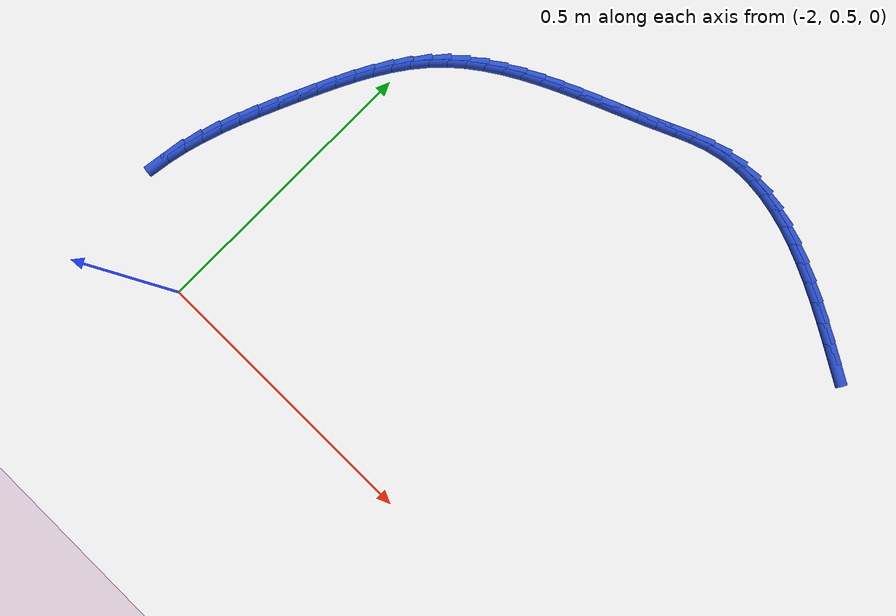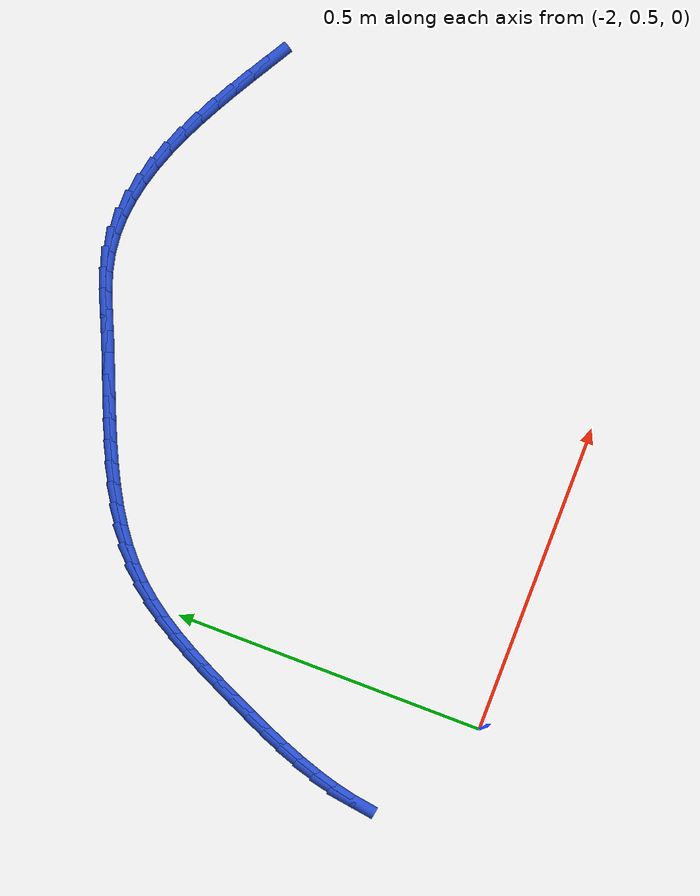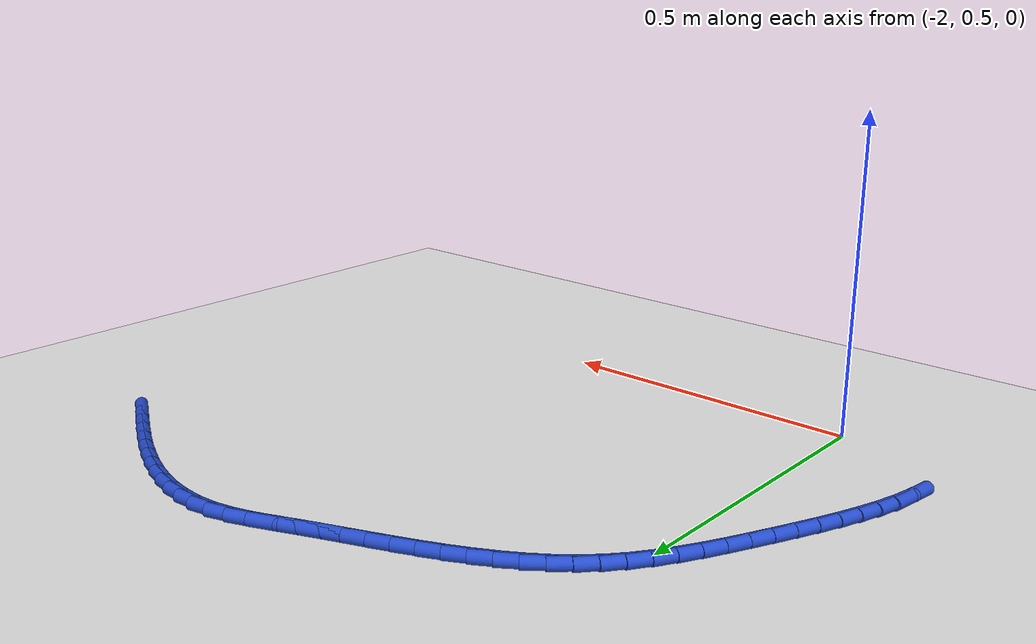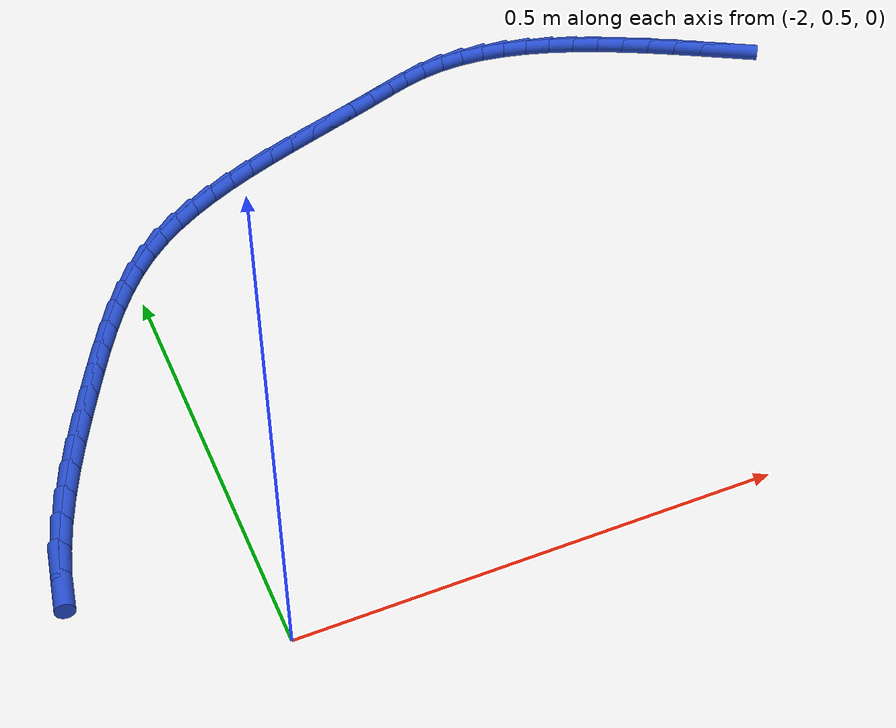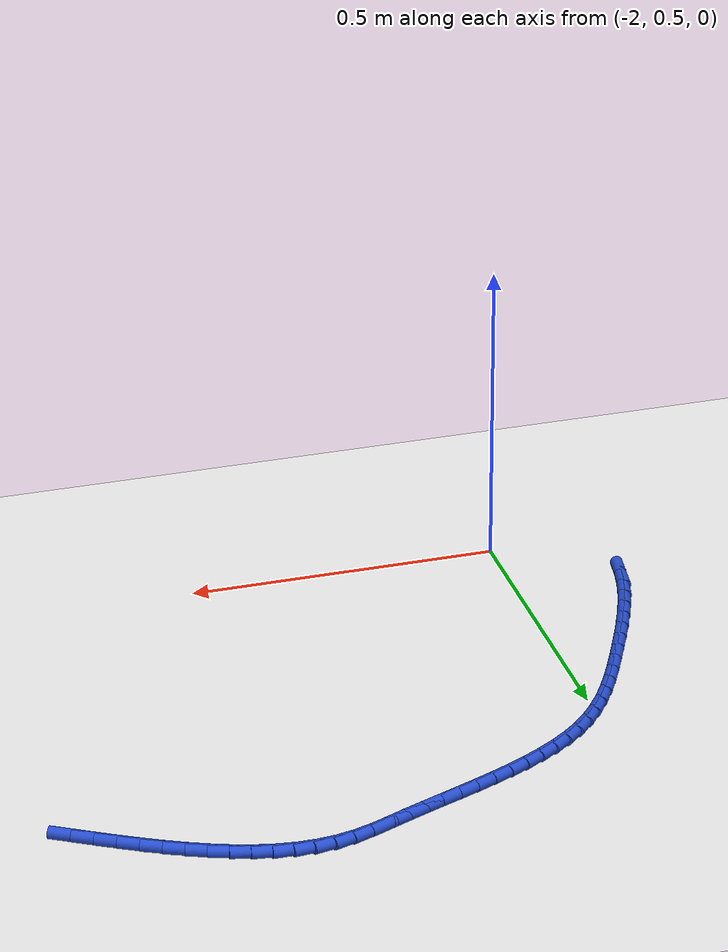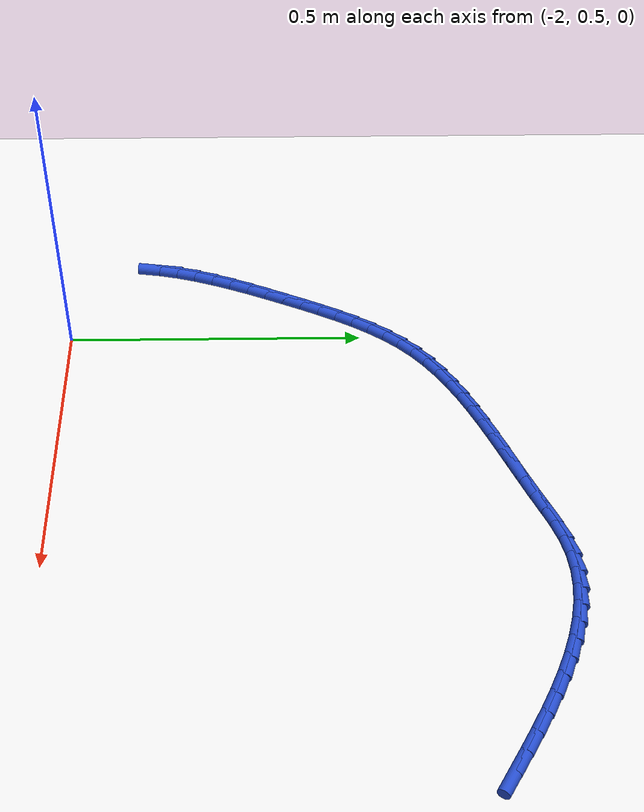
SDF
<sdf version="1.6">
 <world name="default">
  <model name="ground_plane">
   <static>1</static>
   <link name="link">
    <collision name="collision">
     <geometry><plane><normal>0 0 1</normal><size>100 100</size></plane></geometry>
     <surface><friction><ode><mu>100</mu><mu2>50</mu2></ode></friction></surface>
    </collision>
    <visual name="visual">
     <cast_shadows>0</cast_shadows>
     <geometry><plane><normal>0 0 1</normal><size>100 100</size></plane></geometry>
     <material>
      <script><uri>file://media/materials/scripts/gazebo.material</uri><name>Gazebo/WhiteGlow</name></script>
     </material>
    </visual>
   </link>
  </model>
  <model name="line">
   <link name="link_60">
    <pose>-1.1381370934596116 1.1789312146718092 0.01 0 1.57 -0.538388861175772</pose>
    <collision name="collision">
     <geometry><cylinder><radius>0.01</radius><length>0.08</length></cylinder></geometry>
    </collision>
    <visual name="visual">
     <material>
      <script><name>Gazebo/Blue</name><uri>file://media/materials/scripts/gazebo.material</uri></script>
     </material>
     <geometry><cylinder><radius>0.01</radius><length>0.08</length></cylinder></geometry>
    </visual>
   </link>
   <link name="link_61">
    <pose>-1.1689594901298903 1.1973396348787975 0.01 0 1.57 -0.5272426746919803</pose>
    <collision name="collision">
     <geometry><cylinder><radius>0.01</radius><length>0.08</length></cylinder></geometry>
    </collision>
    <visual name="visual">
     <material>
      <script><name>Gazebo/Blue</name><uri>file://media/materials/scripts/gazebo.material</uri></script>
     </material>
     <geometry><cylinder><radius>0.01</radius><length>0.08</length></cylinder></geometry>
    </visual>
   </link>
   <link name="link_62">
    <pose>-1.1998259808511984 1.2153106942731842 0.01 0 1.57 -0.508659933239682</pose>
    <collision name="collision">
     <geometry><cylinder><radius>0.01</radius><length>0.08</length></cylinder></geometry>
    </collision>
    <visual name="visual">
     <material>
      <script><name>Gazebo/Blue</name><uri>file://media/materials/scripts/gazebo.material</uri></script>
     </material>
     <geometry><cylinder><radius>0.01</radius><length>0.08</length></cylinder></geometry>
    </visual>
   </link>
   <link name="link_63">
    <pose>-1.2307246584461935 1.2325398179920721 0.01 0 1.57 -0.48218251883578617</pose>
    <collision name="collision">
     <geometry><cylinder><radius>0.01</radius><length>0.08</length></cylinder></geometry>
    </collision>
    <visual name="visual">
     <material>
      <script><name>Gazebo/Blue</name><uri>file://media/materials/scripts/gazebo.material</uri></script>
     </material>
     <geometry><cylinder><radius>0.01</radius><length>0.08</length></cylinder></geometry>
    </visual>
   </link>
   <link name="link_64">
    <pose>-1.2616436157375317 1.2487224311725627 0.01 0 1.57 -0.447162766416436</pose>
    <collision name="collision">
     <geometry><cylinder><radius>0.01</radius><length>0.08</length></cylinder></geometry>
    </collision>
    <visual name="visual">
     <material>
      <script><name>Gazebo/Blue</name><uri>file://media/materials/scripts/gazebo.material</uri></script>
     </material>
     <geometry><cylinder><radius>0.01</radius><length>0.08</length></cylinder></geometry>
    </visual>
   </link>
   <link name="link_65">
    <pose>-1.2925709455478702 1.263553958951758 0.01 0 1.57 -0.40278114426702993</pose>
    <collision name="collision">
     <geometry><cylinder><radius>0.01</radius><length>0.08</length></cylinder></geometry>
    </collision>
    <visual name="visual">
     <material>
      <script><name>Gazebo/Blue</name><uri>file://media/materials/scripts/gazebo.material</uri></script>
     </material>
     <geometry><cylinder><radius>0.01</radius><length>0.08</length></cylinder></geometry>
    </visual>
   </link>
   <link name="link_66">
    <pose>-1.3234947406998665 1.2767298264667601 0.01 0 1.57 -0.3480916377065569</pose>
    <collision name="collision">
     <geometry><cylinder><radius>0.01</radius><length>0.08</length></cylinder></geometry>
    </collision>
    <visual name="visual">
     <material>
      <script><name>Gazebo/Blue</name><uri>file://media/materials/scripts/gazebo.material</uri></script>
     </material>
     <geometry><cylinder><radius>0.01</radius><length>0.08</length></cylinder></geometry>
    </visual>
   </link>
   <link name="link_67">
    <pose>-1.3544030940161766 1.2879454588546708 0.01 0 1.57 -0.28211795650158694</pose>
    <collision name="collision">
     <geometry><cylinder><radius>0.01</radius><length>0.08</length></cylinder></geometry>
    </collision>
    <visual name="visual">
     <material>
      <script><name>Gazebo/Blue</name><uri>file://media/materials/scripts/gazebo.material</uri></script>
     </material>
     <geometry><cylinder><radius>0.01</radius><length>0.08</length></cylinder></geometry>
    </visual>
   </link>
   <link name="link_68">
    <pose>-1.3852840983194574 1.296896281252592 0.01 0 1.57 -0.20402998788747975</pose>
    <collision name="collision">
     <geometry><cylinder><radius>0.01</radius><length>0.08</length></cylinder></geometry>
    </collision>
    <visual name="visual">
     <material>
      <script><name>Gazebo/Blue</name><uri>file://media/materials/scripts/gazebo.material</uri></script>
     </material>
     <geometry><cylinder><radius>0.01</radius><length>0.08</length></cylinder></geometry>
    </visual>
   </link>
   <link name="link_69">
    <pose>-1.4161258464323665 1.3032777187976257 0.01 0 1.57 -0.1134250429588424</pose>
    <collision name="collision">
     <geometry><cylinder><radius>0.01</radius><length>0.08</length></cylinder></geometry>
    </collision>
    <visual name="visual">
     <material>
      <script><name>Gazebo/Blue</name><uri>file://media/materials/scripts/gazebo.material</uri></script>
     </material>
     <geometry><cylinder><radius>0.01</radius><length>0.08</length></cylinder></geometry>
    </visual>
   </link>
   <link name="link_70">
    <pose>-1.4469164311775604 1.3067851966268738 0.01 0 1.57 -0.010704760677421188</pose>
    <collision name="collision">
     <geometry><cylinder><radius>0.01</radius><length>0.08</length></cylinder></geometry>
    </collision>
    <visual name="visual">
     <material>
      <script><name>Gazebo/Blue</name><uri>file://media/materials/scripts/gazebo.material</uri></script>
     </material>
     <geometry><cylinder><radius>0.01</radius><length>0.08</length></cylinder></geometry>
    </visual>
   </link>
   <link name="link_71">
    <pose>-1.4776439453776957 1.3071141398774384 0.01 0 1.57 0.10253975923354064</pose>
    <collision name="collision">
     <geometry><cylinder><radius>0.01</radius><length>0.08</length></cylinder></geometry>
    </collision>
    <visual name="visual">
     <material>
      <script><name>Gazebo/Blue</name><uri>file://media/materials/scripts/gazebo.material</uri></script>
     </material>
     <geometry><cylinder><radius>0.01</radius><length>0.08</length></cylinder></geometry>
    </visual>
   </link>
   <link name="link_72">
    <pose>-1.5082964818554294 1.3039599736864214 0.01 0 1.57 0.22310440724811872</pose>
    <collision name="collision">
     <geometry><cylinder><radius>0.01</radius><length>0.08</length></cylinder></geometry>
    </collision>
    <visual name="visual">
     <material>
      <script><name>Gazebo/Blue</name><uri>file://media/materials/scripts/gazebo.material</uri></script>
     </material>
     <geometry><cylinder><radius>0.01</radius><length>0.08</length></cylinder></geometry>
    </visual>
   </link>
   <link name="link_73">
    <pose>-1.5388628648128941 1.297025031713841 0.01 0 1.57 0.3295399120203999</pose>
    <collision name="collision">
     <geometry><cylinder><radius>0.01</radius><length>0.08</length></cylinder></geometry>
    </collision>
    <visual name="visual">
     <material>
      <script><name>Gazebo/Blue</name><uri>file://media/materials/scripts/gazebo.material</uri></script>
     </material>
     <geometry><cylinder><radius>0.01</radius><length>0.08</length></cylinder></geometry>
    </visual>
   </link>
   <link name="link_74">
    <pose>-1.5693924663470862 1.28658357578187 0.01 0 1.57 0.3923643624764167</pose>
    <collision name="collision">
     <geometry><cylinder><radius>0.01</radius><length>0.08</length></cylinder></geometry>
    </collision>
    <visual name="visual">
     <material>
      <script><name>Gazebo/Blue</name><uri>file://media/materials/scripts/gazebo.material</uri></script>
     </material>
     <geometry><cylinder><radius>0.01</radius><length>0.08</length></cylinder></geometry>
    </visual>
   </link>
   <link name="link_75">
    <pose>-1.6000396001915544 1.2739011338411081 0.01 0 1.57 0.4131552980902998</pose>
    <collision name="collision">
     <geometry><cylinder><radius>0.01</radius><length>0.08</length></cylinder></geometry>
    </collision>
    <visual name="visual">
     <material>
      <script><name>Gazebo/Blue</name><uri>file://media/materials/scripts/gazebo.material</uri></script>
     </material>
     <geometry><cylinder><radius>0.01</radius><length>0.08</length></cylinder></geometry>
    </visual>
   </link>
   <link name="link_76">
    <pose>-1.6309690410488726 1.2603420469025084 0.01 0 1.57 0.40258670472709024</pose>
    <collision name="collision">
     <geometry><cylinder><radius>0.01</radius><length>0.08</length></cylinder></geometry>
    </collision>
    <visual name="visual">
     <material>
      <script><name>Gazebo/Blue</name><uri>file://media/materials/scripts/gazebo.material</uri></script>
     </material>
     <geometry><cylinder><radius>0.01</radius><length>0.08</length></cylinder></geometry>
    </visual>
   </link>
   <link name="link_77">
    <pose>-1.662282910511357 1.247007171724847 0.01 0 1.57 0.39265116937389616</pose>
    <collision name="collision">
     <geometry><cylinder><radius>0.01</radius><length>0.08</length></cylinder></geometry>
    </collision>
    <visual name="visual">
     <material>
      <script><name>Gazebo/Blue</name><uri>file://media/materials/scripts/gazebo.material</uri></script>
     </material>
     <geometry><cylinder><radius>0.01</radius><length>0.08</length></cylinder></geometry>
    </visual>
   </link>
   <link name="link_78">
    <pose>-1.6938321022162761 1.233940839547459 0.01 0 1.57 0.3910895119794084</pose>
    <collision name="collision">
     <geometry><cylinder><radius>0.01</radius><length>0.08</length></cylinder></geometry>
    </collision>
    <visual name="visual">
     <material>
      <script><name>Gazebo/Blue</name><uri>file://media/materials/scripts/gazebo.material</uri></script>
     </material>
     <geometry><cylinder><radius>0.01</radius><length>0.08</length></cylinder></geometry>
    </visual>
   </link>
   <link name="link_79">
    <pose>-1.7254045485558935 1.2209226015135606 0.01 0 1.57 0.3978843780086546</pose>
    <collision name="collision">
     <geometry><cylinder><radius>0.01</radius><length>0.08</length></cylinder></geometry>
    </collision>
    <visual name="visual">
     <material>
      <script><name>Gazebo/Blue</name><uri>file://media/materials/scripts/gazebo.material</uri></script>
     </material>
     <geometry><cylinder><radius>0.01</radius><length>0.08</length></cylinder></geometry>
    </visual>
   </link>
   <link name="link_80">
    <pose>-1.7567881819224382 1.2077320087662247 0.01 0 1.57 0.41318069459480905</pose>
    <collision name="collision">
     <geometry><cylinder><radius>0.01</radius><length>0.08</length></cylinder></geometry>
    </collision>
    <visual name="visual">
     <material>
      <script><name>Gazebo/Blue</name><uri>file://media/materials/scripts/gazebo.material</uri></script>
     </material>
     <geometry><cylinder><radius>0.01</radius><length>0.08</length></cylinder></geometry>
    </visual>
   </link>
   <link name="link_81">
    <pose>-1.7877709347081392 1.1941486124485228 0.01 0 1.57 0.4372778781065462</pose>
    <collision name="collision">
     <geometry><cylinder><radius>0.01</radius><length>0.08</length></cylinder></geometry>
    </collision>
    <visual name="visual">
     <material>
      <script><name>Gazebo/Blue</name><uri>file://media/materials/scripts/gazebo.material</uri></script>
     </material>
     <geometry><cylinder><radius>0.01</radius><length>0.08</length></cylinder></geometry>
    </visual>
   </link>
   <link name="link_82">
    <pose>-1.8181407393052256 1.1799519637035274 0.01 0 1.57 0.47060798986954094</pose>
    <collision name="collision">
     <geometry><cylinder><radius>0.01</radius><length>0.08</length></cylinder></geometry>
    </collision>
    <visual name="visual">
     <material>
      <script><name>Gazebo/Blue</name><uri>file://media/materials/scripts/gazebo.material</uri></script>
     </material>
     <geometry><cylinder><radius>0.01</radius><length>0.08</length></cylinder></geometry>
    </visual>
   </link>
   <link name="link_83">
    <pose>-1.8476855281059261 1.1649216136743106 0.01 0 1.57 0.5136919646055061</pose>
    <collision name="collision">
     <geometry><cylinder><radius>0.01</radius><length>0.08</length></cylinder></geometry>
    </collision>
    <visual name="visual">
     <material>
      <script><name>Gazebo/Blue</name><uri>file://media/materials/scripts/gazebo.material</uri></script>
     </material>
     <geometry><cylinder><radius>0.01</radius><length>0.08</length></cylinder></geometry>
    </visual>
   </link>
   <link name="link_84">
    <pose>-1.8761932335024694 1.1488371135039448 0.01 0 1.57 0.5670619754738949</pose>
    <collision name="collision">
     <geometry><cylinder><radius>0.01</radius><length>0.08</length></cylinder></geometry>
    </collision>
    <visual name="visual">
     <material>
      <script><name>Gazebo/Blue</name><uri>file://media/materials/scripts/gazebo.material</uri></script>
     </material>
     <geometry><cylinder><radius>0.01</radius><length>0.08</length></cylinder></geometry>
    </visual>
   </link>
   <link name="link_85">
    <pose>-1.9034517878870854 1.131478014335502 0.01 0 1.57 0.6311361856979234</pose>
    <collision name="collision">
     <geometry><cylinder><radius>0.01</radius><length>0.08</length></cylinder></geometry>
    </collision>
    <visual name="visual">
     <material>
      <script><name>Gazebo/Blue</name><uri>file://media/materials/scripts/gazebo.material</uri></script>
     </material>
     <geometry><cylinder><radius>0.01</radius><length>0.08</length></cylinder></geometry>
    </visual>
   </link>
   <link name="link_86">
    <pose>-1.9292491236520017 1.1126238673120545 0.01 0 1.57 0.7060370655140997</pose>
    <collision name="collision">
     <geometry><cylinder><radius>0.01</radius><length>0.08</length></cylinder></geometry>
    </collision>
    <visual name="visual">
     <material>
      <script><name>Gazebo/Blue</name><uri>file://media/materials/scripts/gazebo.material</uri></script>
     </material>
     <geometry><cylinder><radius>0.01</radius><length>0.08</length></cylinder></geometry>
    </visual>
   </link>
   <link name="link_87">
    <pose>-1.953373173189449 1.0920542235766746 0.01 0 1.57 0.7912267181577947</pose>
    <collision name="collision">
     <geometry><cylinder><radius>0.01</radius><length>0.08</length></cylinder></geometry>
    </collision>
    <visual name="visual">
     <material>
      <script><name>Gazebo/Blue</name><uri>file://media/materials/scripts/gazebo.material</uri></script>
     </material>
     <geometry><cylinder><radius>0.01</radius><length>0.08</length></cylinder></geometry>
    </visual>
   </link>
   <link name="link_88">
    <pose>-1.9756149723228351 1.0695516263254532 0.01 0 1.57 0.8776665275633718</pose>
    <collision name="collision">
     <geometry><cylinder><radius>0.01</radius><length>0.08</length></cylinder></geometry>
    </collision>
    <visual name="visual">
     <material>
      <script><name>Gazebo/Blue</name><uri>file://media/materials/scripts/gazebo.material</uri></script>
     </material>
     <geometry><cylinder><radius>0.01</radius><length>0.08</length></cylinder></geometry>
    </visual>
   </link>
   <link name="link_89">
    <pose>-1.9959468578565336 1.0450734130759334 0.01 0 1.57 0.9521118336175165</pose>
    <collision name="collision">
     <geometry><cylinder><radius>0.01</radius><length>0.08</length></cylinder></geometry>
    </collision>
    <visual name="visual">
     <material>
      <script><name>Gazebo/Blue</name><uri>file://media/materials/scripts/gazebo.material</uri></script>
     </material>
     <geometry><cylinder><radius>0.01</radius><length>0.08</length></cylinder></geometry>
    </visual>
   </link>
   <link name="link_90">
    <pose>-2.0146193985112912 1.0188451678756634 0.01 0 1.57 1.0133344262719872</pose>
    <collision name="collision">
     <geometry><cylinder><radius>0.01</radius><length>0.08</length></cylinder></geometry>
    </collision>
    <visual name="visual">
     <material>
      <script><name>Gazebo/Blue</name><uri>file://media/materials/scripts/gazebo.material</uri></script>
     </material>
     <geometry><cylinder><radius>0.01</radius><length>0.08</length></cylinder></geometry>
    </visual>
   </link>
   <link name="link_91">
    <pose>-2.0319067744126564 0.9911152387939759 0.01 0 1.57 1.0617337177088149</pose>
    <collision name="collision">
     <geometry><cylinder><radius>0.01</radius><length>0.08</length></cylinder></geometry>
    </collision>
    <visual name="visual">
     <material>
      <script><name>Gazebo/Blue</name><uri>file://media/materials/scripts/gazebo.material</uri></script>
     </material>
     <geometry><cylinder><radius>0.01</radius><length>0.08</length></cylinder></geometry>
    </visual>
   </link>
   <link name="link_92">
    <pose>-2.048083165686174 0.9621319739002031 0.01 0 1.57 1.0979753591319306</pose>
    <collision name="collision">
     <geometry><cylinder><radius>0.01</radius><length>0.08</length></cylinder></geometry>
    </collision>
    <visual name="visual">
     <material>
      <script><name>Gazebo/Blue</name><uri>file://media/materials/scripts/gazebo.material</uri></script>
     </material>
     <geometry><cylinder><radius>0.01</radius><length>0.08</length></cylinder></geometry>
    </visual>
   </link>
   <link name="link_93">
    <pose>-2.0634227524573925 0.9321437212636783 0.01 0 1.57 1.1227632650837915</pose>
    <collision name="collision">
     <geometry><cylinder><radius>0.01</radius><length>0.08</length></cylinder></geometry>
    </collision>
    <visual name="visual">
     <material>
      <script><name>Gazebo/Blue</name><uri>file://media/materials/scripts/gazebo.material</uri></script>
     </material>
     <geometry><cylinder><radius>0.01</radius><length>0.08</length></cylinder></geometry>
    </visual>
   </link>
   <link name="link_94">
    <pose>-2.078199714851858 0.901398828953734 0.01 0 1.57 1.1367133160908147</pose>
    <collision name="collision">
     <geometry><cylinder><radius>0.01</radius><length>0.08</length></cylinder></geometry>
    </collision>
    <visual name="visual">
     <material>
      <script><name>Gazebo/Blue</name><uri>file://media/materials/scripts/gazebo.material</uri></script>
     </material>
     <geometry><cylinder><radius>0.01</radius><length>0.08</length></cylinder></geometry>
    </visual>
   </link>
   <link name="link_95">
    <pose>-2.0926878765852575 0.8701455224514482 0.01 0 1.57 1.1447757916629326</pose>
    <collision name="collision">
     <geometry><cylinder><radius>0.01</radius><length>0.08</length></cylinder></geometry>
    </collision>
    <visual name="visual">
     <material>
      <script><name>Gazebo/Blue</name><uri>file://media/materials/scripts/gazebo.material</uri></script>
     </material>
     <geometry><cylinder><radius>0.01</radius><length>0.08</length></cylinder></geometry>
    </visual>
   </link>
   <link name="link_96">
    <pose>-2.1070123344975977 0.8385808721767536 0.01 0 1.57 1.158613838547929</pose>
    <collision name="collision">
     <geometry><cylinder><radius>0.01</radius><length>0.08</length></cylinder></geometry>
    </collision>
    <visual name="visual">
     <material>
      <script><name>Gazebo/Blue</name><uri>file://media/materials/scripts/gazebo.material</uri></script>
     </material>
     <geometry><cylinder><radius>0.01</radius><length>0.08</length></cylinder></geometry>
    </visual>
   </link>
   <link name="link_97">
    <pose>-2.1209201171206598 0.8067719108053257 0.01 0 1.57 1.1801956151307578</pose>
    <collision name="collision">
     <geometry><cylinder><radius>0.01</radius><length>0.08</length></cylinder></geometry>
    </collision>
    <visual name="visual">
     <material>
      <script><name>Gazebo/Blue</name><uri>file://media/materials/scripts/gazebo.material</uri></script>
     </material>
     <geometry><cylinder><radius>0.01</radius><length>0.08</length></cylinder></geometry>
    </visual>
   </link>
   <link name="link_98">
    <pose>-2.134099067078058 0.7747653138397509 0.01 0 1.57 1.2098769935240672</pose>
    <collision name="collision">
     <geometry><cylinder><radius>0.01</radius><length>0.08</length></cylinder></geometry>
    </collision>
    <visual name="visual">
     <material>
      <script><name>Gazebo/Blue</name><uri>file://media/materials/scripts/gazebo.material</uri></script>
     </material>
     <geometry><cylinder><radius>0.01</radius><length>0.08</length></cylinder></geometry>
    </visual>
   </link>
   <link name="link_99">
    <pose>-2.146237026993408 0.7426077567826159 0.01 0 1.57 1.2481849791352073</pose>
    <collision name="collision">
     <geometry><cylinder><radius>0.01</radius><length>0.08</length></cylinder></geometry>
    </collision>
    <visual name="visual">
     <material>
      <script><name>Gazebo/Blue</name><uri>file://media/materials/scripts/gazebo.material</uri></script>
     </material>
     <geometry><cylinder><radius>0.01</radius><length>0.08</length></cylinder></geometry>
    </visual>
   </link>
   <link name="link_100">
    <pose>-2.157021839490324 0.710345915136507 0.01 0 1.57 1.295778574364983</pose>
    <collision name="collision">
     <geometry><cylinder><radius>0.01</radius><length>0.08</length></cylinder></geometry>
    </collision>
    <visual name="visual">
     <material>
      <script><name>Gazebo/Blue</name><uri>file://media/materials/scripts/gazebo.material</uri></script>
     </material>
     <geometry><cylinder><radius>0.01</radius><length>0.08</length></cylinder></geometry>
    </visual>
   </link>
   <link name="link_101">
    <pose>-2.1661413471924207 0.6780264644040109 0.01 0 1.57 1.3533799581453783</pose>
    <collision name="collision">
     <geometry><cylinder><radius>0.01</radius><length>0.08</length></cylinder></geometry>
    </collision>
    <visual name="visual">
     <material>
      <script><name>Gazebo/Blue</name><uri>file://media/materials/scripts/gazebo.material</uri></script>
     </material>
     <geometry><cylinder><radius>0.01</radius><length>0.08</length></cylinder></geometry>
    </visual>
   </link>
   <link name="link_102">
    <pose>-2.1732833927233126 0.6456960800877143 0.01 0 1.57 1.4216571666201132</pose>
    <collision name="collision">
     <geometry><cylinder><radius>0.01</radius><length>0.08</length></cylinder></geometry>
    </collision>
    <visual name="visual">
     <material>
      <script><name>Gazebo/Blue</name><uri>file://media/materials/scripts/gazebo.material</uri></script>
     </material>
     <geometry><cylinder><radius>0.01</radius><length>0.08</length></cylinder></geometry>
    </visual>
   </link>
  </model>
 </world>
</sdf>
